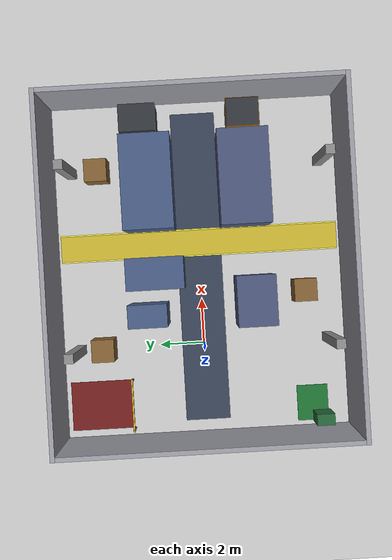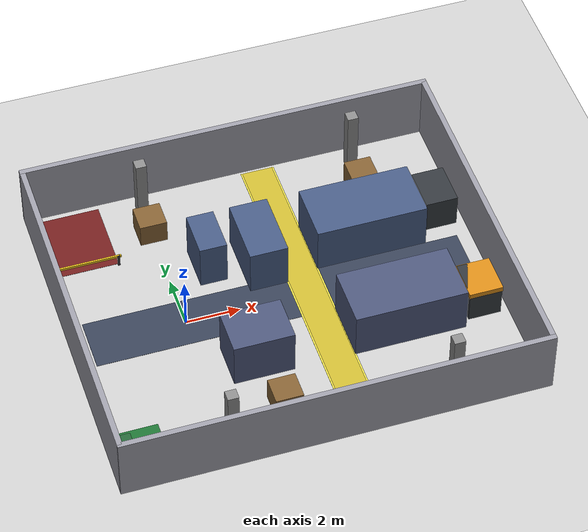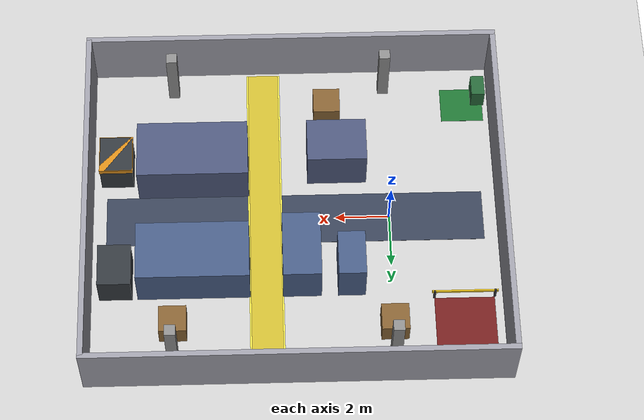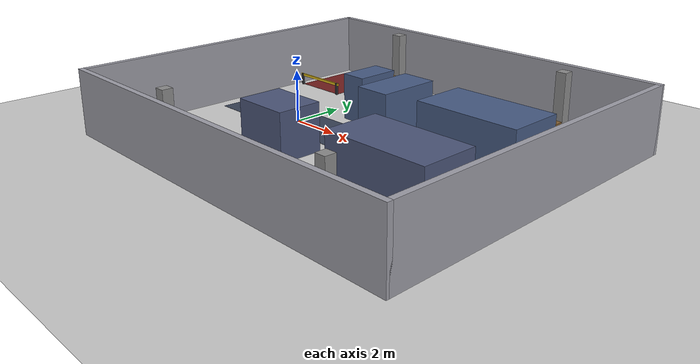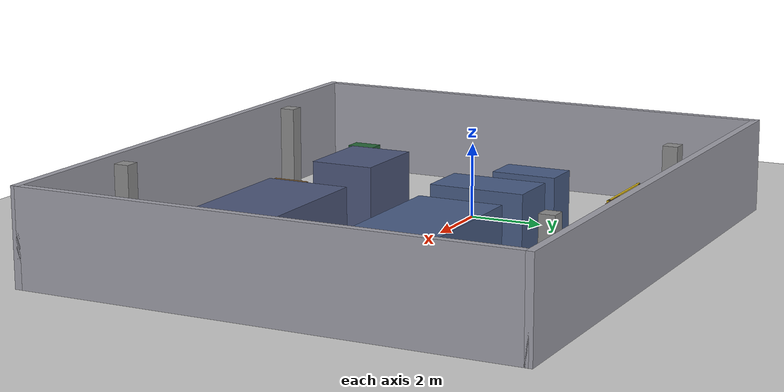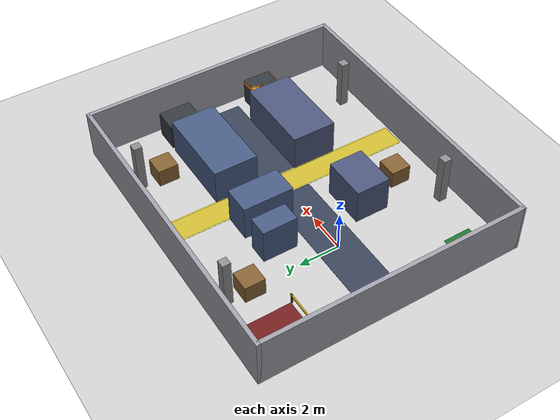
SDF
<?xml version="1.0"?>
<sdf version="1.6">
  <world name="factory_world">

    <include><uri>model://sun</uri></include>
    <include><uri>model://ground_plane</uri></include>

    <!-- Fill light so the racks do not cast the aisles into deep shadow. Uses no online DB. -->
    <light name="fill" type="directional">
      <pose>3 0 9 0 0 0</pose>
      <diffuse>0.5 0.5 0.5 1</diffuse>
      <specular>0.1 0.1 0.1 1</specular>
      <direction>-0.2 0.2 -1.0</direction>
      <cast_shadows>false</cast_shadows>
    </light>

    <physics type="ode">
      <max_step_size>0.005</max_step_size>
      <real_time_factor>1.0</real_time_factor>
      <real_time_update_rate>200</real_time_update_rate>
    </physics>

    <!-- Provides /gazebo/set_entity_state so the worker manager can move workers. -->
    <plugin name="gazebo_ros_state" filename="libgazebo_ros_state.so">
      <ros><namespace>/gazebo</namespace></ros>
      <update_rate>20.0</update_rate>
    </plugin>

    <!-- ================= Floor zone paint (visual only) ================= -->

    <!-- Robot/AMR lane down the middle (y in [-1, 1]). -->
    <model name="robot_lane">
      <static>true</static>
      <link name="link">
        <visual name="v">
          <pose>3.5 0 0.005 0 0 0</pose>
          <geometry><box><size>14 2.0 0.01</size></box></geometry>
          <material><ambient>0.22 0.26 0.34 1</ambient><diffuse>0.22 0.26 0.34 1</diffuse></material>
        </visual>
      </link>
    </model>

    <!-- Pedestrian walkway (1.2 m wide, north-south) crossing the robot lane at x ~ 4.6. -->
    <model name="walkway">
      <static>true</static>
      <link name="link">
        <visual name="lane"><pose>4.6 0 0.006 0 0 0</pose>
          <geometry><box><size>1.2 12.6 0.01</size></box></geometry>
          <material><ambient>0.80 0.72 0.20 1</ambient><diffuse>0.80 0.72 0.20 1</diffuse></material></visual>
        <visual name="edge_w"><pose>4.0 0 0.007 0 0 0</pose>
          <geometry><box><size>0.06 12.6 0.01</size></box></geometry>
          <material><ambient>0.95 0.90 0.30 1</ambient><diffuse>0.95 0.90 0.30 1</diffuse></material></visual>
        <visual name="edge_e"><pose>5.2 0 0.007 0 0 0</pose>
          <geometry><box><size>0.06 12.6 0.01</size></box></geometry>
          <material><ambient>0.95 0.90 0.30 1</ambient><diffuse>0.95 0.90 0.30 1</diffuse></material></visual>
      </link>
    </model>

    <!-- Restricted zone floor (NW corner) - static paint only, no planner logic keys off it. -->
    <model name="restricted_zone">
      <static>true</static>
      <link name="link">
        <visual name="v"><pose>-2.6 4.8 0.004 0 0 0</pose>
          <geometry><box><size>2.2 2.8 0.01</size></box></geometry>
          <material><ambient>0.45 0.12 0.12 1</ambient><diffuse>0.45 0.12 0.12 1</diffuse></material></visual>
      </link>
    </model>

    <!-- Charging area pad (SW corner) - visual only. -->
    <model name="charging_pad">
      <static>true</static>
      <link name="link">
        <visual name="v"><pose>-3.0 -4.8 0.004 0 0 0</pose>
          <geometry><box><size>1.6 1.4 0.01</size></box></geometry>
          <material><ambient>0.12 0.45 0.20 1</ambient><diffuse>0.12 0.45 0.20 1</diffuse></material></visual>
      </link>
    </model>

    <!-- ================= Perimeter walls (2.5 m tall) ================= -->
    <model name="walls">
      <static>true</static>
      <link name="link">
        <collision name="n"><pose>3.5 6.5 1.25 0 0 0</pose>
          <geometry><box><size>15.4 0.2 2.5</size></box></geometry></collision>
        <visual name="nv"><pose>3.5 6.5 1.25 0 0 0</pose>
          <geometry><box><size>15.4 0.2 2.5</size></box></geometry>
          <material><ambient>0.62 0.62 0.66 1</ambient><diffuse>0.62 0.62 0.66 1</diffuse></material></visual>
        <collision name="s"><pose>3.5 -6.5 1.25 0 0 0</pose>
          <geometry><box><size>15.4 0.2 2.5</size></box></geometry></collision>
        <visual name="sv"><pose>3.5 -6.5 1.25 0 0 0</pose>
          <geometry><box><size>15.4 0.2 2.5</size></box></geometry>
          <material><ambient>0.62 0.62 0.66 1</ambient><diffuse>0.62 0.62 0.66 1</diffuse></material></visual>
        <collision name="w"><pose>-4.1 0 1.25 0 0 0</pose>
          <geometry><box><size>0.2 13.0 2.5</size></box></geometry></collision>
        <visual name="wv"><pose>-4.1 0 1.25 0 0 0</pose>
          <geometry><box><size>0.2 13.0 2.5</size></box></geometry>
          <material><ambient>0.62 0.62 0.66 1</ambient><diffuse>0.62 0.62 0.66 1</diffuse></material></visual>
        <collision name="e"><pose>11.1 0 1.25 0 0 0</pose>
          <geometry><box><size>0.2 13.0 2.5</size></box></geometry></collision>
        <visual name="ev"><pose>11.1 0 1.25 0 0 0</pose>
          <geometry><box><size>0.2 13.0 2.5</size></box></geometry>
          <material><ambient>0.62 0.62 0.66 1</ambient><diffuse>0.62 0.62 0.66 1</diffuse></material></visual>
      </link>
    </model>

    <model name="rack_n_west">
      <static>true</static>
      <link name="link"><pose>1.5 2.35 0.9 0 0 0</pose>
        <collision name="c"><geometry><box><size>1.0 1.7 1.8</size></box></geometry></collision>
        <visual name="v"><geometry><box><size>1.0 1.7 1.8</size></box></geometry>
          <material><ambient>0.28 0.36 0.52 1</ambient><diffuse>0.28 0.36 0.52 1</diffuse></material></visual>
      </link>
    </model>
    <model name="rack_n_corner">
      <static>true</static>
      <link name="link"><pose>3.3 1.95 0.9 0 0 0</pose>
        <collision name="c"><geometry><box><size>1.4 2.5 1.8</size></box></geometry></collision>
        <visual name="v"><geometry><box><size>1.4 2.5 1.8</size></box></geometry>
          <material><ambient>0.28 0.36 0.52 1</ambient><diffuse>0.28 0.36 0.52 1</diffuse></material></visual>
      </link>
    </model>
    <model name="rack_n_east">
      <static>true</static>
      <link name="link"><pose>7.25 2.1 0.9 0 0 0</pose>
        <collision name="c"><geometry><box><size>4.1 2.2 1.8</size></box></geometry></collision>
        <visual name="v"><geometry><box><size>4.1 2.2 1.8</size></box></geometry>
          <material><ambient>0.28 0.36 0.52 1</ambient><diffuse>0.28 0.36 0.52 1</diffuse></material></visual>
      </link>
    </model>
    <model name="rack_s_west">
      <static>true</static>
      <link name="link"><pose>1.9 -2.35 0.9 0 0 0</pose>
        <collision name="c"><geometry><box><size>2.2 1.7 1.8</size></box></geometry></collision>
        <visual name="v"><geometry><box><size>2.2 1.7 1.8</size></box></geometry>
          <material><ambient>0.30 0.34 0.48 1</ambient><diffuse>0.30 0.34 0.48 1</diffuse></material></visual>
      </link>
    </model>
    <model name="rack_s_east">
      <static>true</static>
      <link name="link"><pose>7.25 -2.1 0.9 0 0 0</pose>
        <collision name="c"><geometry><box><size>4.1 2.2 1.8</size></box></geometry></collision>
        <visual name="v"><geometry><box><size>4.1 2.2 1.8</size></box></geometry>
          <material><ambient>0.30 0.34 0.48 1</ambient><diffuse>0.30 0.34 0.48 1</diffuse></material></visual>
      </link>
    </model>

    <!-- ================= Production cells / machines (dark, 1.3 m tall) ================= -->
    <model name="machine_east">
      <static>true</static>
      <link name="link"><pose>10.1 -2.2 0.65 0 0 0</pose>
        <collision name="c"><geometry><box><size>1.2 1.4 1.3</size></box></geometry></collision>
        <visual name="v"><geometry><box><size>1.2 1.4 1.3</size></box></geometry>
          <material><ambient>0.20 0.22 0.24 1</ambient><diffuse>0.20 0.22 0.24 1</diffuse></material></visual>
        <visual name="panel"><pose>0 0 0.55 0 0 0</pose>
          <geometry><box><size>1.24 1.44 0.2</size></box></geometry>
          <material><ambient>0.85 0.55 0.10 1</ambient><diffuse>0.85 0.55 0.10 1</diffuse></material></visual>
      </link>
    </model>
    <model name="machine_ne">
      <static>true</static>
      <link name="link"><pose>10.1 2.4 0.65 0 0 0</pose>
        <collision name="c"><geometry><box><size>1.2 1.6 1.3</size></box></geometry></collision>
        <visual name="v"><geometry><box><size>1.2 1.6 1.3</size></box></geometry>
          <material><ambient>0.20 0.22 0.24 1</ambient><diffuse>0.20 0.22 0.24 1</diffuse></material></visual>
      </link>
    </model>

    <!-- ================= Structural columns (0.4 x 0.4, 2.5 m, concrete) ================= -->
    <model name="columns">
      <static>true</static>
      <link name="link">
        <collision name="c0"><pose>0 5.6 1.25 0 0 0</pose>
          <geometry><box><size>0.4 0.4 2.5</size></box></geometry></collision>
        <visual name="v0"><pose>0 5.6 1.25 0 0 0</pose>
          <geometry><box><size>0.4 0.4 2.5</size></box></geometry>
          <material><ambient>0.55 0.55 0.55 1</ambient><diffuse>0.55 0.55 0.55 1</diffuse></material></visual>
        <collision name="c1"><pose>8 5.6 1.25 0 0 0</pose>
          <geometry><box><size>0.4 0.4 2.5</size></box></geometry></collision>
        <visual name="v1"><pose>8 5.6 1.25 0 0 0</pose>
          <geometry><box><size>0.4 0.4 2.5</size></box></geometry>
          <material><ambient>0.55 0.55 0.55 1</ambient><diffuse>0.55 0.55 0.55 1</diffuse></material></visual>
        <collision name="c2"><pose>0 -5.6 1.25 0 0 0</pose>
          <geometry><box><size>0.4 0.4 2.5</size></box></geometry></collision>
        <visual name="v2"><pose>0 -5.6 1.25 0 0 0</pose>
          <geometry><box><size>0.4 0.4 2.5</size></box></geometry>
          <material><ambient>0.55 0.55 0.55 1</ambient><diffuse>0.55 0.55 0.55 1</diffuse></material></visual>
        <collision name="c3"><pose>8 -5.6 1.25 0 0 0</pose>
          <geometry><box><size>0.4 0.4 2.5</size></box></geometry></collision>
        <visual name="v3"><pose>8 -5.6 1.25 0 0 0</pose>
          <geometry><box><size>0.4 0.4 2.5</size></box></geometry>
          <material><ambient>0.55 0.55 0.55 1</ambient><diffuse>0.55 0.55 0.55 1</diffuse></material></visual>
      </link>
    </model>

    <!-- ================= Pallet stacks (0.9 m, wood + boxes) - decorative obstacles ========= -->
    <model name="pallets">
      <static>true</static>
      <link name="link">
        <collision name="c0"><pose>0 4.5 0.45 0 0 0</pose>
          <geometry><box><size>1.0 1.0 0.9</size></box></geometry></collision>
        <visual name="v0"><pose>0 4.5 0.45 0 0 0</pose>
          <geometry><box><size>1.0 1.0 0.9</size></box></geometry>
          <material><ambient>0.52 0.38 0.20 1</ambient><diffuse>0.52 0.38 0.20 1</diffuse></material></visual>
        <collision name="c1"><pose>8 4.4 0.45 0 0 0</pose>
          <geometry><box><size>1.0 1.0 0.9</size></box></geometry></collision>
        <visual name="v1"><pose>8 4.4 0.45 0 0 0</pose>
          <geometry><box><size>1.0 1.0 0.9</size></box></geometry>
          <material><ambient>0.52 0.38 0.20 1</ambient><diffuse>0.52 0.38 0.20 1</diffuse></material></visual>
        <collision name="c2"><pose>2.2 -4.6 0.45 0 0 0</pose>
          <geometry><box><size>1.0 1.0 0.9</size></box></geometry></collision>
        <visual name="v2"><pose>2.2 -4.6 0.45 0 0 0</pose>
          <geometry><box><size>1.0 1.0 0.9</size></box></geometry>
          <material><ambient>0.52 0.38 0.20 1</ambient><diffuse>0.52 0.38 0.20 1</diffuse></material></visual>
      </link>
    </model>

    <!-- ================= Safety guard rail (0.5 m, hi-vis) at the restricted-zone edge ====== -->
    <model name="guard_rail">
      <static>true</static>
      <link name="link">
        <collision name="rail"><pose>-2.6 3.35 0.45 0 0 0</pose>
          <geometry><box><size>2.4 0.06 0.1</size></box></geometry></collision>
        <visual name="railv"><pose>-2.6 3.35 0.45 0 0 0</pose>
          <geometry><box><size>2.4 0.06 0.1</size></box></geometry>
          <material><ambient>0.90 0.75 0.10 1</ambient><diffuse>0.90 0.75 0.10 1</diffuse></material></visual>
        <collision name="p0"><pose>-3.7 3.35 0.25 0 0 0</pose>
          <geometry><box><size>0.08 0.08 0.5</size></box></geometry></collision>
        <visual name="p0v"><pose>-3.7 3.35 0.25 0 0 0</pose>
          <geometry><box><size>0.08 0.08 0.5</size></box></geometry>
          <material><ambient>0.20 0.20 0.22 1</ambient><diffuse>0.20 0.20 0.22 1</diffuse></material></visual>
        <collision name="p1"><pose>-1.5 3.35 0.25 0 0 0</pose>
          <geometry><box><size>0.08 0.08 0.5</size></box></geometry></collision>
        <visual name="p1v"><pose>-1.5 3.35 0.25 0 0 0</pose>
          <geometry><box><size>0.08 0.08 0.5</size></box></geometry>
          <material><ambient>0.20 0.20 0.22 1</ambient><diffuse>0.20 0.20 0.22 1</diffuse></material></visual>
      </link>
    </model>

    <!-- Charger cabinet at the charging pad (SW corner), 0.8 m, collision on. -->
    <model name="charger_cabinet">
      <static>true</static>
      <link name="link"><pose>-3.6 -5.2 0.4 0 0 0</pose>
        <collision name="c"><geometry><box><size>0.5 0.8 0.8</size></box></geometry></collision>
        <visual name="v"><geometry><box><size>0.5 0.8 0.8</size></box></geometry>
          <material><ambient>0.15 0.40 0.22 1</ambient><diffuse>0.15 0.40 0.22 1</diffuse></material></visual>
      </link>
    </model>

  </world>
</sdf>
